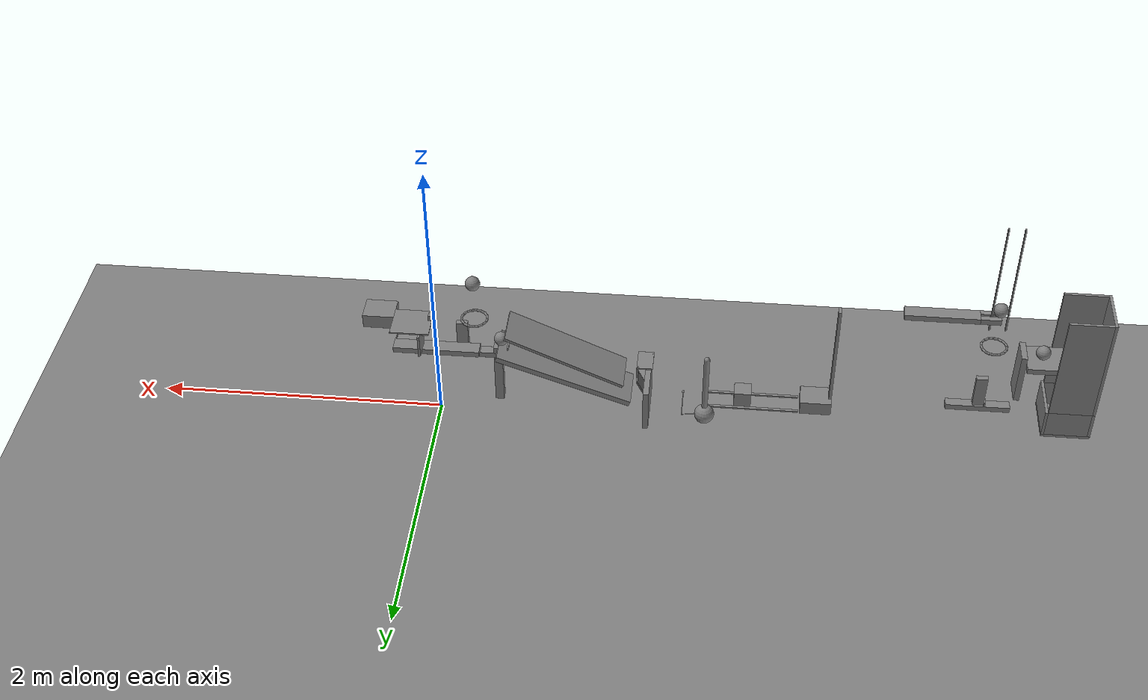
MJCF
<mujoco model="restrained_cascade_with_assisted_door">
  <compiler angle="radian"/>
  <option timestep="0.002"/>
  <worldbody>
    <geom name="floor" type="plane" size="12 12 0.1" friction="0.72 0.005 0.0001"/>
    <body name="lever1" pos="0 0 0.55">
      <joint name="lever1_hinge" type="hinge" pos="0 0 0" axis="0 1 0" limited="true" range="-0.785398 0" stiffness="0.03" springref="-0.785398" damping="0.04"/>
      <geom name="lever1" type="box" pos="0 0 0" size="0.3 0.05 0.02" mass="0.411" friction="0.72 0.005 0.0001" solref="0.01 0.715646"/>
      <geom name="lever counterweight" type="box" pos="0.015 0.03 0.3" size="0.02 0.02 0.02" mass="0.08" friction="0.72 0.005 0.0001" solref="0.01 0.715646"/>
      <geom name="lever counterweight stem" type="capsule" size="0.002" fromto="0 0 0 0.015 0.03 0.28" mass="0.001" friction="0.72 0.005 0.0001" solref="0.01 0.715646"/>
      <geom name="lever gate lifter" type="box" pos="0.1 0.045 0.1025" size="0.0075 0.08 0.0825" mass="0.003" friction="0.72 0.005 0.0001" solref="0.01 0.715646"/>
      <geom name="lever cart striker" type="sphere" pos="0.29 -0.13 0.02" size="0.01" mass="0.003" friction="0.72 0.005 0.0001" solref="0.01 0.715646"/>
      <geom name="lever striker link" type="capsule" size="0.005" fromto="0.3 0 0 0.29 -0.13 0.02" mass="0.002" friction="0.72 0.005 0.0001" solref="0.01 0.715646"/>
    </body>
    <body name="ring1">
      <geom name="ring1_00" type="capsule" size="0.008" fromto="-0.197 0.04 0.87 -0.203699 0.0736761 0.87" friction="0.72 0.005 0.0001" solref="0.01 0.715646"/>
      <geom name="ring1_01" type="capsule" size="0.008" fromto="-0.203699 0.0736761 0.87 -0.222775 0.102225 0.87" friction="0.72 0.005 0.0001" solref="0.01 0.715646"/>
      <geom name="ring1_02" type="capsule" size="0.008" fromto="-0.222775 0.102225 0.87 -0.251324 0.121301 0.87" friction="0.72 0.005 0.0001" solref="0.01 0.715646"/>
      <geom name="ring1_03" type="capsule" size="0.008" fromto="-0.251324 0.121301 0.87 -0.285 0.128 0.87" friction="0.72 0.005 0.0001" solref="0.01 0.715646"/>
      <geom name="ring1_04" type="capsule" size="0.008" fromto="-0.285 0.128 0.87 -0.318676 0.121301 0.87" friction="0.72 0.005 0.0001" solref="0.01 0.715646"/>
      <geom name="ring1_05" type="capsule" size="0.008" fromto="-0.318676 0.121301 0.87 -0.347225 0.102225 0.87" friction="0.72 0.005 0.0001" solref="0.01 0.715646"/>
      <geom name="ring1_06" type="capsule" size="0.008" fromto="-0.347225 0.102225 0.87 -0.366301 0.0736761 0.87" friction="0.72 0.005 0.0001" solref="0.01 0.715646"/>
      <geom name="ring1_07" type="capsule" size="0.008" fromto="-0.366301 0.0736761 0.87 -0.373 0.04 0.87" friction="0.72 0.005 0.0001" solref="0.01 0.715646"/>
      <geom name="ring1_08" type="capsule" size="0.008" fromto="-0.373 0.04 0.87 -0.366301 0.00632386 0.87" friction="0.72 0.005 0.0001" solref="0.01 0.715646"/>
      <geom name="ring1_09" type="capsule" size="0.008" fromto="-0.366301 0.00632386 0.87 -0.347225 -0.0222254 0.87" friction="0.72 0.005 0.0001" solref="0.01 0.715646"/>
      <geom name="ring1_10" type="capsule" size="0.008" fromto="-0.347225 -0.0222254 0.87 -0.318676 -0.0413014 0.87" friction="0.72 0.005 0.0001" solref="0.01 0.715646"/>
      <geom name="ring1_11" type="capsule" size="0.008" fromto="-0.318676 -0.0413014 0.87 -0.285 -0.048 0.87" friction="0.72 0.005 0.0001" solref="0.01 0.715646"/>
      <geom name="ring1_12" type="capsule" size="0.008" fromto="-0.285 -0.048 0.87 -0.251324 -0.0413014 0.87" friction="0.72 0.005 0.0001" solref="0.01 0.715646"/>
      <geom name="ring1_13" type="capsule" size="0.008" fromto="-0.251324 -0.0413014 0.87 -0.222775 -0.0222254 0.87" friction="0.72 0.005 0.0001" solref="0.01 0.715646"/>
      <geom name="ring1_14" type="capsule" size="0.008" fromto="-0.222775 -0.0222254 0.87 -0.203699 0.00632386 0.87" friction="0.72 0.005 0.0001" solref="0.01 0.715646"/>
      <geom name="ring1_15" type="capsule" size="0.008" fromto="-0.203699 0.00632386 0.87 -0.197 0.04 0.87" friction="0.72 0.005 0.0001" solref="0.01 0.715646"/>
    </body>
    <body name="ball1" pos="-0.285 0.04 1.17">
      <freejoint/>
      <geom name="ball1" type="sphere" pos="0 0 0" size="0.05" mass="0.2" condim="6" friction="0.72 0.005 0.0001" solref="0.01 0.715646"/>
    </body>
    <body name="cart1 release gate" pos="0.165 -0.02 0.75">
      <joint name="cart1_gate_slide" type="slide" pos="0 0 0" axis="0 0 1" limited="true" range="0 0.05" damping="0.2"/>
      <geom name="cart1 release gate" type="box" pos="0 0 0" size="0.135 0.125 0.005" mass="0.04" friction="0.72 0.005 0.0001" solref="0.01 0.715646"/>
    </body>
    <body name="cart1" pos="0.41 -0.15 0.7">
      <joint name="cart1_slide" type="slide" pos="0 0 0" axis="1 0 0" limited="true" range="-0.6 0" stiffness="180" springref="-0.42" damping="0.2"/>
      <geom name="cart1" type="box" pos="0 0 0" size="0.11 0.09 0.05" mass="0.5" friction="0.72 0.005 0.0001" solref="0.01 0.715646"/>
    </body>
    <body name="domino1 platform">
      <geom name="domino1 platform" type="box" pos="-0.3 -0.15 0.41" size="0.2 0.035 0.02" friction="0.72 0.005 0.0001" solref="0.01 0.715646"/>
    </body>
    <body name="domino1 toe">
      <geom name="domino1 toe" type="box" pos="-0.205 -0.15 0.445" size="0.005 0.03 0.015" friction="0.72 0.005 0.0001" solref="0.01 0.715646"/>
    </body>
    <body name="domino1" pos="-0.16 -0.15 0.55">
      <freejoint/>
      <geom name="domino1" type="box" pos="0 0 0" size="0.04 0.02 0.12" mass="0.25" friction="0.72 0.005 0.0001" solref="0.01 0.715646"/>
    </body>
    <body name="ramp1">
      <geom name="ramp1_deck" type="box" pos="-0.875906 -0.15 0.302216" size="0.5 0.15 0.02" euler="0 2.79253 0" friction="0.72 0.005 0.0001" solref="0.01 0.715646"/>
      <geom name="ramp1_leg" type="box" pos="-0.406059 -0.15 0.236613" size="0.03 0.03 0.236613" friction="0.72 0.005 0.0001" solref="0.01 0.715646"/>
    </body>
    <body name="ball2" pos="-0.43 -0.15 0.539004">
      <freejoint/>
      <geom name="ball2" type="sphere" pos="0 0 0" size="0.05" mass="0.2" condim="6" friction="0.72 0.005 0.0001" solref="0.01 0.715646"/>
    </body>
    <body name="ball2 retaining lip">
      <geom name="ball2 retaining lip" type="box" pos="-0.48 -0.15 0.492" size="0.005 0.06 0.01" friction="0.72 0.005 0.0001" solref="0.01 0.715646"/>
    </body>
    <body name="ramp cover">
      <geom name="ramp cover" type="box" pos="-0.885696 -0.15 0.475306" size="0.451283 0.15 0.01" euler="0 2.71711 0" friction="0.72 0.005 0.0001" solref="0.01 0.715646"/>
    </body>
    <body name="door1 release gate" pos="-1.49075 -0.285 0.34">
      <joint name="door1_gate_slide" type="slide" pos="0 0 0" axis="0 0 1" limited="true" range="0 0.08" damping="0.2"/>
      <geom name="door1 release gate" type="box" pos="0 0 0" size="0.005 0.025 0.005" mass="0.02" friction="0.72 0.005 0.0001" solref="0.01 0.715646"/>
      <geom name="door latch rear stem" type="box" pos="0 0 0.01" size="0.0025 0.01 0.01" mass="0.002" friction="0.72 0.005 0.0001" solref="0.01 0.715646"/>
      <geom name="door latch bridge" type="box" pos="0.051 0.065 0.015" size="0.056 0.09 0.005" mass="0.005" friction="0.72 0.005 0.0001" solref="0.01 0.715646"/>
      <geom name="door latch front stem" type="box" pos="0.102 0.135 -0.0325" size="0.005 0.01 0.0525" mass="0.002" friction="0.72 0.005 0.0001" solref="0.01 0.715646"/>
      <geom name="door release cam" type="box" pos="0.077 0.135 -0.13" size="0.0559017 0.06 0.005" euler="0 2.03444 0" mass="0.02" friction="0.72 0.005 0.0001" solref="0.01 0.715646"/>
    </body>
    <body name="door1" pos="-1.46575 0.12 0.18">
      <joint name="door1_hinge" type="hinge" pos="0 0 0" axis="0 0 1" limited="true" range="-1.22173 0" stiffness="8" springref="-1.22173" damping="0.04"/>
      <geom name="door1" type="box" pos="0 -0.21 0" size="0.02 0.21 0.16" mass="0.45" friction="0.72 0.005 0.0001" solref="0.01 0.715646"/>
    </body>
    <body name="pendulum1" pos="-1.87448 -0.012058 0.575">
      <joint name="pendulum1_hinge" type="hinge" pos="0 0 0" axis="0 1 0" limited="true" range="0 0.785398" stiffness="0.1" springref="-0.0872665" damping="0.04"/>
      <geom name="pendulum1" type="sphere" pos="0 0 -0.5" size="0.07" mass="0.275" friction="0.72 0.005 0.0001" solref="0.01 0.715646"/>
      <geom name="pendulum rod" type="capsule" size="0.02" fromto="0 0 0 0 0 -0.43" mass="0.07" friction="0.72 0.005 0.0001" solref="0.01 0.715646"/>
      <geom name="pendulum block striker" type="sphere" pos="0.16 -0.237942 -0.52" size="0.01" mass="0.002" friction="0.72 0.005 0.0001" solref="0.01 0.715646"/>
      <geom name="pendulum reach rod" type="capsule" size="0.0025" fromto="0 0 -0.5 0.16 0 -0.52" mass="0.001" friction="0.72 0.005 0.0001" solref="0.01 0.715646"/>
      <geom name="pendulum lateral rod" type="capsule" size="0.0025" fromto="0.16 0 -0.52 0.16 -0.237942 -0.52" mass="0.002" friction="0.72 0.005 0.0001" solref="0.01 0.715646"/>
    </body>
    <body name="block1" pos="-2.13854 -0.25 0.06">
      <freejoint/>
      <geom name="block1" type="box" pos="0 0 0" size="0.06 0.06 0.06" mass="0.35" friction="0.72 0.005 0.0001" solref="0.01 0.715646"/>
    </body>
    <body name="block left guide">
      <geom name="block left guide" type="box" pos="-2.19854 -0.175 0.005" size="0.34 0.01 0.005" friction="0.72 0.005 0.0001" solref="0.01 0.715646"/>
    </body>
    <body name="block right guide">
      <geom name="block right guide" type="box" pos="-2.19854 -0.325 0.005" size="0.34 0.01 0.005" friction="0.72 0.005 0.0001" solref="0.01 0.715646"/>
    </body>
    <body name="cart2" pos="-2.65854 -0.25 0.05">
      <joint name="cart2_slide" type="slide" pos="0 0 0" axis="1 0 0" limited="true" range="-0.65 0" damping="0.2"/>
      <geom name="cart2" type="box" pos="0 0 0" size="0.11 0.09 0.05" mass="0.48" friction="0.72 0.005 0.0001" solref="0.01 0.715646"/>
      <geom name="cart2 upright" type="box" pos="-0.1 0 0.445" size="0.01 0.03 0.395" mass="0.02" friction="0.72 0.005 0.0001" solref="0.01 0.715646"/>
    </body>
    <body name="seesaw1" pos="-3.51354 -0.25 0.9">
      <joint name="seesaw1_hinge" type="hinge" pos="0 0 0" axis="0 1 0" limited="true" range="0 0.733038" stiffness="0.75" springref="0.733038" damping="0.04"/>
      <geom name="seesaw1" type="box" pos="0.07 0 0" size="0.255 0.05 0.02" mass="0.450965" friction="0.72 0.005 0.0001" solref="0.01 0.715646"/>
      <geom name="seesaw upper tine" type="box" pos="-0.255 0.03 0" size="0.07 0.02 0.02" mass="0.0495177" friction="0.72 0.005 0.0001" solref="0.01 0.715646"/>
      <geom name="seesaw lower tine" type="box" pos="-0.255 -0.03 0" size="0.07 0.02 0.02" mass="0.0495177" friction="0.72 0.005 0.0001" solref="0.01 0.715646"/>
    </body>
    <body name="ball3 forward guide">
      <geom name="ball3 forward guide" type="box" pos="-3.77354 -0.25 1.225" size="0.005 0.009 0.425" friction="0.72 0.005 0.0001" solref="0.01 0.715646"/>
    </body>
    <body name="ball3 rear guide">
      <geom name="ball3 rear guide" type="box" pos="-3.88354 -0.25 1.225" size="0.005 0.009 0.425" friction="0.72 0.005 0.0001" solref="0.01 0.715646"/>
    </body>
    <body name="ball3" pos="-3.82854 -0.25 0.97">
      <freejoint/>
      <geom name="ball3" type="sphere" pos="0 0 0" size="0.05" mass="0.2" condim="6" friction="0.72 0.005 0.0001" solref="0.01 0.715646"/>
    </body>
    <body name="ring2">
      <geom name="ring2_00" type="capsule" size="0.008" fromto="-3.74054 -0.25 0.65 -3.74724 -0.216324 0.65" friction="0.72 0.005 0.0001" solref="0.01 0.715646"/>
      <geom name="ring2_01" type="capsule" size="0.008" fromto="-3.74724 -0.216324 0.65 -3.76632 -0.187775 0.65" friction="0.72 0.005 0.0001" solref="0.01 0.715646"/>
      <geom name="ring2_02" type="capsule" size="0.008" fromto="-3.76632 -0.187775 0.65 -3.79487 -0.168699 0.65" friction="0.72 0.005 0.0001" solref="0.01 0.715646"/>
      <geom name="ring2_03" type="capsule" size="0.008" fromto="-3.79487 -0.168699 0.65 -3.82854 -0.162 0.65" friction="0.72 0.005 0.0001" solref="0.01 0.715646"/>
      <geom name="ring2_04" type="capsule" size="0.008" fromto="-3.82854 -0.162 0.65 -3.86222 -0.168699 0.65" friction="0.72 0.005 0.0001" solref="0.01 0.715646"/>
      <geom name="ring2_05" type="capsule" size="0.008" fromto="-3.86222 -0.168699 0.65 -3.89077 -0.187775 0.65" friction="0.72 0.005 0.0001" solref="0.01 0.715646"/>
      <geom name="ring2_06" type="capsule" size="0.008" fromto="-3.89077 -0.187775 0.65 -3.90985 -0.216324 0.65" friction="0.72 0.005 0.0001" solref="0.01 0.715646"/>
      <geom name="ring2_07" type="capsule" size="0.008" fromto="-3.90985 -0.216324 0.65 -3.91654 -0.25 0.65" friction="0.72 0.005 0.0001" solref="0.01 0.715646"/>
      <geom name="ring2_08" type="capsule" size="0.008" fromto="-3.91654 -0.25 0.65 -3.90985 -0.283676 0.65" friction="0.72 0.005 0.0001" solref="0.01 0.715646"/>
      <geom name="ring2_09" type="capsule" size="0.008" fromto="-3.90985 -0.283676 0.65 -3.89077 -0.312225 0.65" friction="0.72 0.005 0.0001" solref="0.01 0.715646"/>
      <geom name="ring2_10" type="capsule" size="0.008" fromto="-3.89077 -0.312225 0.65 -3.86222 -0.331301 0.65" friction="0.72 0.005 0.0001" solref="0.01 0.715646"/>
      <geom name="ring2_11" type="capsule" size="0.008" fromto="-3.86222 -0.331301 0.65 -3.82854 -0.338 0.65" friction="0.72 0.005 0.0001" solref="0.01 0.715646"/>
      <geom name="ring2_12" type="capsule" size="0.008" fromto="-3.82854 -0.338 0.65 -3.79487 -0.331301 0.65" friction="0.72 0.005 0.0001" solref="0.01 0.715646"/>
      <geom name="ring2_13" type="capsule" size="0.008" fromto="-3.79487 -0.331301 0.65 -3.76632 -0.312225 0.65" friction="0.72 0.005 0.0001" solref="0.01 0.715646"/>
      <geom name="ring2_14" type="capsule" size="0.008" fromto="-3.76632 -0.312225 0.65 -3.74724 -0.283676 0.65" friction="0.72 0.005 0.0001" solref="0.01 0.715646"/>
      <geom name="ring2_15" type="capsule" size="0.008" fromto="-3.74724 -0.283676 0.65 -3.74054 -0.25 0.65" friction="0.72 0.005 0.0001" solref="0.01 0.715646"/>
    </body>
    <body name="domino2 platform">
      <geom name="domino2 platform" type="box" pos="-3.79354 -0.25 0.1" size="0.225 0.035 0.02" friction="0.72 0.005 0.0001" solref="0.01 0.715646"/>
    </body>
    <body name="domino2 toe">
      <geom name="domino2 toe" type="box" pos="-3.83854 -0.25 0.135" size="0.005 0.03 0.015" friction="0.72 0.005 0.0001" solref="0.01 0.715646"/>
    </body>
    <body name="domino2" pos="-3.79354 -0.25 0.24">
      <freejoint/>
      <geom name="domino2" type="box" pos="0 0 0" size="0.04 0.02 0.12" mass="0.25" friction="0.72 0.005 0.0001" solref="0.01 0.715646"/>
    </body>
    <body name="flap1" pos="-4.03354 -0.25 0.63">
      <joint name="flap1_hinge" type="hinge" pos="0 0 0" axis="0 1 0" limited="true" range="0 1.0472" damping="0.04"/>
      <geom name="flap1" type="box" pos="0 0 -0.19" size="0.02 0.09 0.19" mass="0.28" friction="0.72 0.005 0.0001" solref="0.01 0.715646"/>
    </body>
    <body name="cup1">
      <geom name="cup1_base" type="box" pos="-4.40544 -0.25 0.01" size="0.17 0.17 0.01" friction="0.72 0.005 0.0001" solref="0.01 0.715646"/>
      <geom name="cup1_near_wall" type="box" pos="-4.56544 -0.25 0.12" size="0.01 0.17 0.1" friction="0.72 0.005 0.0001" solref="0.01 0.715646"/>
      <geom name="cup1_far_wall" type="box" pos="-4.24544 -0.25 0.12" size="0.01 0.17 0.1" friction="0.72 0.005 0.0001" solref="0.01 0.715646"/>
      <geom name="cup1_left_wall" type="box" pos="-4.40544 -0.09 0.12" size="0.15 0.01 0.1" friction="0.72 0.005 0.0001" solref="0.01 0.715646"/>
      <geom name="cup1_right_wall" type="box" pos="-4.40544 -0.41 0.12" size="0.15 0.01 0.1" friction="0.72 0.005 0.0001" solref="0.01 0.715646"/>
    </body>
    <body name="shelf1">
      <geom name="shelf1" type="box" pos="-4.21044 -0.25 0.55" size="0.15 0.125 0.02" friction="0.72 0.005 0.0001" solref="0.01 0.715646"/>
    </body>
    <body name="ball4" pos="-4.17044 -0.25 0.62">
      <freejoint/>
      <geom name="ball4" type="sphere" pos="0 0 0" size="0.05" mass="0.2" condim="6" friction="0.72 0.005 0.0001" solref="0.01 0.715646"/>
    </body>
    <body name="cup backstop">
      <geom name="cup backstop" type="box" pos="-4.56544 -0.25 0.62" size="0.01 0.17 0.4" friction="0.72 0.005 0.0001" solref="0.01 0.715646"/>
    </body>
    <body name="cup left catch guide">
      <geom name="cup left catch guide" type="box" pos="-4.40544 -0.09 0.62" size="0.15 0.01 0.4" friction="0.72 0.005 0.0001" solref="0.01 0.715646"/>
    </body>
    <body name="cup right catch guide">
      <geom name="cup right catch guide" type="box" pos="-4.40544 -0.41 0.62" size="0.15 0.01 0.4" friction="0.72 0.005 0.0001" solref="0.01 0.715646"/>
    </body>
  </worldbody>
  <keyframe>
    <key name="start" qpos="0 -0.285 0.04 1.17 1 0 0 0 0 0 -0.16 -0.15 0.55 1 0 0 0 -0.43 -0.15 0.539004 1 0 0 0 0 0 0 -2.13854 -0.25 0.06 1 0 0 0 0 0 -3.82854 -0.25 0.97 1 0 0 0 -3.79354 -0.25 0.24 1 0 0 0 0 -4.17044 -0.25 0.62 1 0 0 0" qvel="0 0 0 0 0 0 0 0 0 0 0 0 0 0 0 0 0 0 0 0 0 0 0 0 0 0 0 0 0 0 0 0 0 0 0 0 0 0 0 0 0 0 0 0 0 0 0 0 0 0 0"/>
  </keyframe>
</mujoco>
